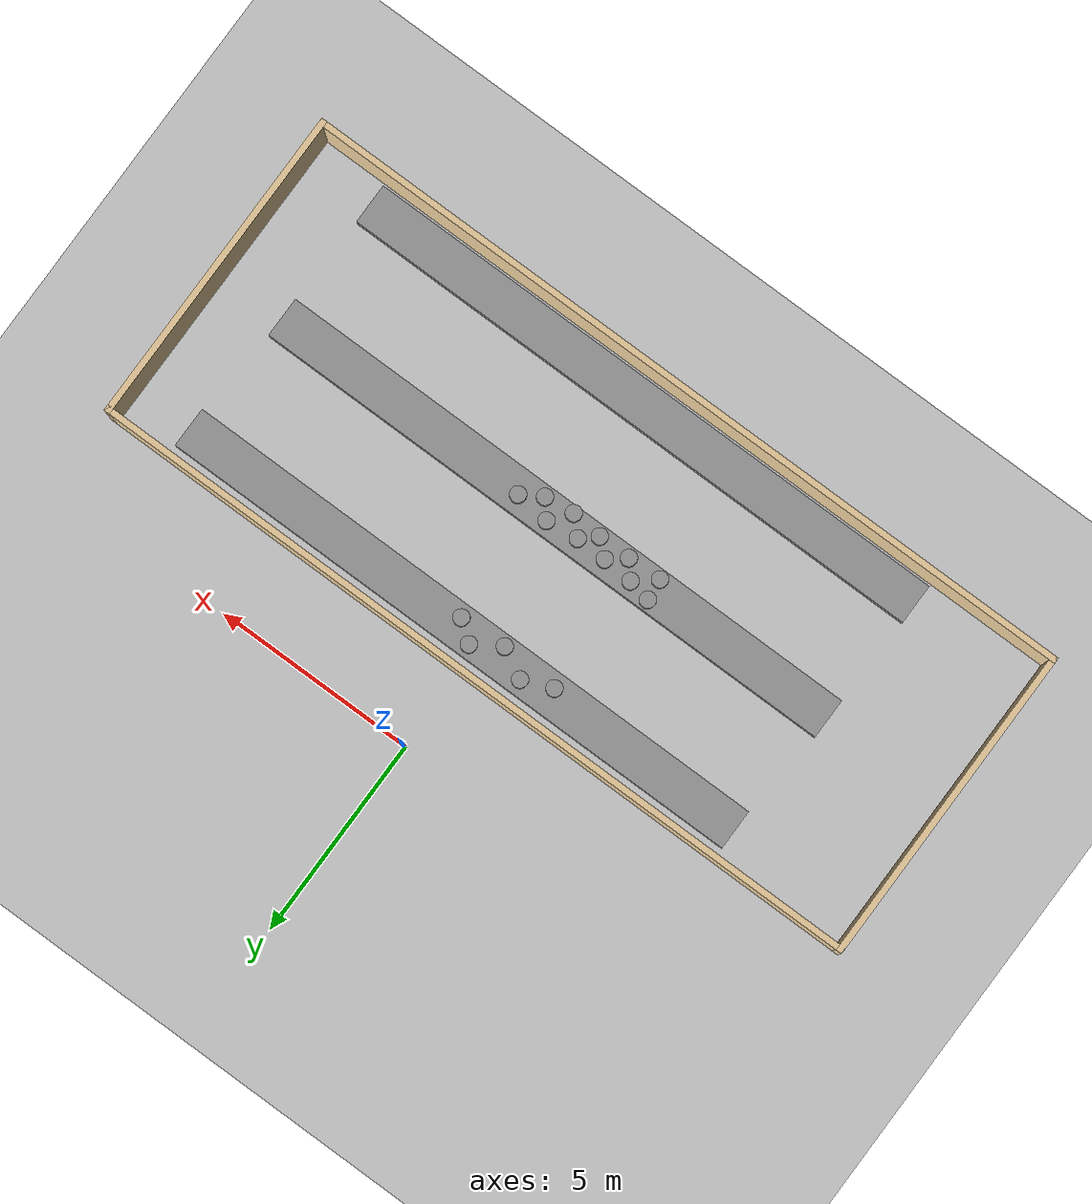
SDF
<sdf version="1.7">
 <world name="default">
  <model name="ground_plane">
   <static>1</static>
   <link name="link">
    <collision name="collision">
     <geometry><plane><normal>0 0 1</normal><size>100 100</size></plane></geometry>
     <surface>
      <contact><collide_bitmask>65535</collide_bitmask></contact>
      <friction><ode><mu>100</mu><mu2>50</mu2></ode></friction>
     </surface>
    </collision>
    <visual name="visual">
     <cast_shadows>0</cast_shadows>
     <geometry><plane><normal>0 0 1</normal><size>100 100</size></plane></geometry>
     <material>
      <script><uri>file://media/materials/scripts/gazebo.material</uri><name>Gazebo/Grey</name></script>
     </material>
    </visual>
   </link>
  </model>
  <model name="Test_Building">
   <pose>-0.420117 -4.99407 0 0 -0 0</pose>
   <link name="Wall_3">
    <collision name="Wall_3_Collision">
     <geometry><box><size>20 0.15 2.5</size></box></geometry>
     <pose>0 0 1.25 0 -0 0</pose>
    </collision>
    <visual name="Wall_3_Visual">
     <pose>0 0 1.25 0 -0 0</pose>
     <geometry><box><size>20 0.15 2.5</size></box></geometry>
     <material>
      <script><uri>file://media/materials/scripts/gazebo.material</uri><name>Gazebo/Grey</name></script>
      <ambient>0.921569 0.807843 0.615686 1</ambient>
     </material>
     <meta><layer>0</layer></meta>
    </visual>
    <pose>0 2.93093 0 0 -0 0</pose>
   </link>
   <link name="Wall_4">
    <collision name="Wall_4_Collision">
     <geometry><box><size>8 0.15 2.5</size></box></geometry>
     <pose>0 0 1.25 0 -0 0</pose>
    </collision>
    <visual name="Wall_4_Visual">
     <pose>0 0 1.25 0 -0 0</pose>
     <geometry><box><size>8 0.15 2.5</size></box></geometry>
     <material>
      <script><uri>file://media/materials/scripts/gazebo.material</uri><name>Gazebo/Grey</name></script>
      <ambient>0.921569 0.807843 0.615686 1</ambient>
     </material>
     <meta><layer>0</layer></meta>
    </visual>
    <pose>9.925 -0.994068 0 0 -0 -1.5708</pose>
   </link>
   <link name="Wall_5">
    <collision name="Wall_5_Collision">
     <geometry><box><size>20 0.15 2.5</size></box></geometry>
     <pose>0 0 1.25 0 -0 0</pose>
    </collision>
    <visual name="Wall_5_Visual">
     <pose>0 0 1.25 0 -0 0</pose>
     <geometry><box><size>20 0.15 2.5</size></box></geometry>
     <material>
      <script><uri>file://media/materials/scripts/gazebo.material</uri><name>Gazebo/Grey</name></script>
      <ambient>0.921569 0.807843 0.615686 1</ambient>
     </material>
     <meta><layer>0</layer></meta>
    </visual>
    <pose>0 -4.91907 0 0 -0 3.14159</pose>
   </link>
   <link name="Wall_6">
    <collision name="Wall_6_Collision">
     <geometry><box><size>8 0.15 2.5</size></box></geometry>
     <pose>0 0 1.25 0 -0 0</pose>
    </collision>
    <visual name="Wall_6_Visual">
     <pose>0 0 1.25 0 -0 0</pose>
     <geometry><box><size>8 0.15 2.5</size></box></geometry>
     <material>
      <script><uri>file://media/materials/scripts/gazebo.material</uri><name>Gazebo/Grey</name></script>
      <ambient>0.921569 0.807843 0.615686 1</ambient>
     </material>
     <meta><layer>0</layer></meta>
    </visual>
    <pose>-9.925 -0.994068 0 0 -0 1.5708</pose>
   </link>
   <static>1</static>
  </model>
  <model name="Test_Bench">
   <link name="link_1">
    <inertial>
     <mass>6.47546</mass>
     <inertia><ixx>0.639529</ixx><ixy>0</ixy><ixz>0</ixz><iyy>122.309</iyy><iyz>0</iyz><izz>122.749</izz></inertia>
    </inertial>
    <pose>-0 4e-06 0 0 -0 0</pose>
    <visual name="visual">
     <geometry><box><size>15.049 1 0.430283</size></box></geometry>
     <material>
      <lighting>1</lighting>
      <script><uri>file://media/materials/scripts/gazebo.material</uri><name>Gazebo/Grey</name></script>
      <shader type="pixel"/>
     </material>
    </visual>
    <collision name="collision">
     <geometry><box><size>15.049 1 0.430283</size></box></geometry>
     <surface>
      <friction>
       <ode><mu>1</mu><mu2>1</mu2><fdir1>0 0 0</fdir1><slip1>0</slip1><slip2>0</slip2></ode>
       <torsional>
        <coefficient>1</coefficient>
        <patch_radius>0</patch_radius>
        <surface_radius>0</surface_radius>
        <use_patch_radius>1</use_patch_radius>
        <ode><slip>0</slip></ode>
       </torsional>
      </friction>
      <bounce><restitution_coefficient>0</restitution_coefficient><threshold>1e+06</threshold></bounce>
      <contact>
       <collide_without_contact>0</collide_without_contact>
       <collide_without_contact_bitmask>1</collide_without_contact_bitmask>
       <collide_bitmask>1</collide_bitmask>
       <ode>
        <soft_cfm>0</soft_cfm>
        <soft_erp>0.2</soft_erp>
        <kp>1e+13</kp>
        <kd>1</kd>
        <max_vel>0.01</max_vel>
        <min_depth>0</min_depth>
       </ode>
       <bullet>
        <split_impulse>1</split_impulse>
        <split_impulse_penetration_threshold>-0.01</split_impulse_penetration_threshold>
        <soft_cfm>0</soft_cfm>
        <soft_erp>0.2</soft_erp>
        <kp>1e+13</kp>
        <kd>1</kd>
       </bullet>
      </contact>
     </surface>
    </collision>
   </link>
   <static>0</static>
   <pose>0.548934 -2.85968 0.215134 -1.4e-05 -0 9e-06</pose>
  </model>
  <model name="Test_Bench_clone">
   <link name="link_1">
    <inertial>
     <mass>6.47546</mass>
     <inertia><ixx>0.639529</ixx><ixy>0</ixy><ixz>0</ixz><iyy>122.309</iyy><iyz>0</iyz><izz>122.749</izz></inertia>
    </inertial>
    <pose>-0 4e-06 0 0 -0 0</pose>
    <visual name="visual">
     <geometry><box><size>15.049 1 0.430283</size></box></geometry>
     <material>
      <lighting>1</lighting>
      <script><uri>file://media/materials/scripts/gazebo.material</uri><name>Gazebo/Grey</name></script>
      <shader type="pixel"/>
     </material>
    </visual>
    <collision name="collision">
     <geometry><box><size>15.049 1 0.430283</size></box></geometry>
     <surface>
      <friction>
       <ode><mu>1</mu><mu2>1</mu2><fdir1>0 0 0</fdir1><slip1>0</slip1><slip2>0</slip2></ode>
       <torsional>
        <coefficient>1</coefficient>
        <patch_radius>0</patch_radius>
        <surface_radius>0</surface_radius>
        <use_patch_radius>1</use_patch_radius>
        <ode><slip>0</slip></ode>
       </torsional>
      </friction>
      <bounce><restitution_coefficient>0</restitution_coefficient><threshold>1e+06</threshold></bounce>
      <contact>
       <collide_without_contact>0</collide_without_contact>
       <collide_without_contact_bitmask>1</collide_without_contact_bitmask>
       <collide_bitmask>1</collide_bitmask>
       <ode>
        <soft_cfm>0</soft_cfm>
        <soft_erp>0.2</soft_erp>
        <kp>1e+13</kp>
        <kd>1</kd>
        <max_vel>0.01</max_vel>
        <min_depth>0</min_depth>
       </ode>
       <bullet>
        <split_impulse>1</split_impulse>
        <split_impulse_penetration_threshold>-0.01</split_impulse_penetration_threshold>
        <soft_cfm>0</soft_cfm>
        <soft_erp>0.2</soft_erp>
        <kp>1e+13</kp>
        <kd>1</kd>
       </bullet>
      </contact>
     </surface>
    </collision>
   </link>
   <static>0</static>
   <pose>0.345714 -6.05819 0.215135 -1.4e-05 -0 2e-06</pose>
  </model>
  <model name="Test_Bench_clone_0">
   <link name="link_1">
    <inertial>
     <mass>6.47546</mass>
     <inertia><ixx>0.639529</ixx><ixy>0</ixy><ixz>0</ixz><iyy>122.309</iyy><iyz>0</iyz><izz>122.749</izz></inertia>
    </inertial>
    <pose>-0 4e-06 0 0 -0 0</pose>
    <visual name="visual">
     <geometry><box><size>15.049 1 0.430283</size></box></geometry>
     <material>
      <lighting>1</lighting>
      <script><uri>file://media/materials/scripts/gazebo.material</uri><name>Gazebo/Grey</name></script>
      <shader type="pixel"/>
     </material>
    </visual>
    <collision name="collision">
     <geometry><box><size>15.049 1 0.430283</size></box></geometry>
     <surface>
      <friction>
       <ode><mu>1</mu><mu2>1</mu2><fdir1>0 0 0</fdir1><slip1>0</slip1><slip2>0</slip2></ode>
       <torsional>
        <coefficient>1</coefficient>
        <patch_radius>0</patch_radius>
        <surface_radius>0</surface_radius>
        <use_patch_radius>1</use_patch_radius>
        <ode><slip>0</slip></ode>
       </torsional>
      </friction>
      <bounce><restitution_coefficient>0</restitution_coefficient><threshold>1e+06</threshold></bounce>
      <contact>
       <collide_without_contact>0</collide_without_contact>
       <collide_without_contact_bitmask>1</collide_without_contact_bitmask>
       <collide_bitmask>1</collide_bitmask>
       <ode>
        <soft_cfm>0</soft_cfm>
        <soft_erp>0.2</soft_erp>
        <kp>1e+13</kp>
        <kd>1</kd>
        <max_vel>0.01</max_vel>
        <min_depth>0</min_depth>
       </ode>
       <bullet>
        <split_impulse>1</split_impulse>
        <split_impulse_penetration_threshold>-0.01</split_impulse_penetration_threshold>
        <soft_cfm>0</soft_cfm>
        <soft_erp>0.2</soft_erp>
        <kp>1e+13</kp>
        <kd>1</kd>
       </bullet>
      </contact>
     </surface>
    </collision>
   </link>
   <static>0</static>
   <pose>0.286602 -9.2541 0.215141 0 -0 0</pose>
  </model>
  <model name="Test_pot_clone_8">
   <link name="link_0">
    <inertial>
     <mass>0.044841</mass>
     <inertia>
      <ixx>0.000748065</ixx>
      <ixy>0</ixy>
      <ixz>0</ixz>
      <iyy>0.000748065</iyy>
      <iyz>0</iyz>
      <izz>0.000864954</izz>
     </inertia>
    </inertial>
    <pose>3e-06 1e-06 0 0 -0 0</pose>
    <visual name="visual">
     <geometry><cylinder><radius>0.196415</radius><length>0.290612</length></cylinder></geometry>
     <material>
      <lighting>1</lighting>
      <script><uri>file://media/materials/scripts/gazebo.material</uri><name>Gazebo/Grey</name></script>
      <shader type="pixel"/>
     </material>
    </visual>
    <collision name="collision">
     <geometry><cylinder><radius>0.196415</radius><length>0.290612</length></cylinder></geometry>
     <surface>
      <friction>
       <ode><mu>1</mu><mu2>1</mu2><fdir1>0 0 0</fdir1><slip1>0</slip1><slip2>0</slip2></ode>
       <torsional>
        <coefficient>1</coefficient>
        <patch_radius>0</patch_radius>
        <surface_radius>0</surface_radius>
        <use_patch_radius>1</use_patch_radius>
        <ode><slip>0</slip></ode>
       </torsional>
      </friction>
      <bounce><restitution_coefficient>0</restitution_coefficient><threshold>1e+06</threshold></bounce>
      <contact>
       <collide_without_contact>0</collide_without_contact>
       <collide_without_contact_bitmask>1</collide_without_contact_bitmask>
       <collide_bitmask>1</collide_bitmask>
       <ode>
        <soft_cfm>0</soft_cfm>
        <soft_erp>0.2</soft_erp>
        <kp>1e+13</kp>
        <kd>1</kd>
        <max_vel>0.01</max_vel>
        <min_depth>0</min_depth>
       </ode>
       <bullet>
        <split_impulse>1</split_impulse>
        <split_impulse_penetration_threshold>-0.01</split_impulse_penetration_threshold>
        <soft_cfm>0</soft_cfm>
        <soft_erp>0.2</soft_erp>
        <kp>1e+13</kp>
        <kd>1</kd>
       </bullet>
      </contact>
     </surface>
    </collision>
   </link>
   <static>0</static>
   <pose>-1.90554 -2.99928 0.575587 -3e-05 1e-05 -0.000545</pose>
  </model>
  <model name="Test_pot_clone_9">
   <link name="link_0">
    <inertial>
     <mass>0.044841</mass>
     <inertia>
      <ixx>0.000748065</ixx>
      <ixy>0</ixy>
      <ixz>0</ixz>
      <iyy>0.000748065</iyy>
      <iyz>0</iyz>
      <izz>0.000864954</izz>
     </inertia>
    </inertial>
    <pose>3e-06 1e-06 0 0 -0 0</pose>
    <visual name="visual">
     <geometry><cylinder><radius>0.196415</radius><length>0.290612</length></cylinder></geometry>
     <material>
      <lighting>1</lighting>
      <script><uri>file://media/materials/scripts/gazebo.material</uri><name>Gazebo/Grey</name></script>
      <shader type="pixel"/>
     </material>
    </visual>
    <collision name="collision">
     <geometry><cylinder><radius>0.196415</radius><length>0.290612</length></cylinder></geometry>
     <surface>
      <friction>
       <ode><mu>1</mu><mu2>1</mu2><fdir1>0 0 0</fdir1><slip1>0</slip1><slip2>0</slip2></ode>
       <torsional>
        <coefficient>1</coefficient>
        <patch_radius>0</patch_radius>
        <surface_radius>0</surface_radius>
        <use_patch_radius>1</use_patch_radius>
        <ode><slip>0</slip></ode>
       </torsional>
      </friction>
      <bounce><restitution_coefficient>0</restitution_coefficient><threshold>1e+06</threshold></bounce>
      <contact>
       <collide_without_contact>0</collide_without_contact>
       <collide_without_contact_bitmask>1</collide_without_contact_bitmask>
       <collide_bitmask>1</collide_bitmask>
       <ode>
        <soft_cfm>0</soft_cfm>
        <soft_erp>0.2</soft_erp>
        <kp>1e+13</kp>
        <kd>1</kd>
        <max_vel>0.01</max_vel>
        <min_depth>0</min_depth>
       </ode>
       <bullet>
        <split_impulse>1</split_impulse>
        <split_impulse_penetration_threshold>-0.01</split_impulse_penetration_threshold>
        <soft_cfm>0</soft_cfm>
        <soft_erp>0.2</soft_erp>
        <kp>1e+13</kp>
        <kd>1</kd>
       </bullet>
      </contact>
     </surface>
    </collision>
   </link>
   <static>0</static>
   <pose>-1.17974 -2.7047 0.575608 -5.6e-05 -6e-06 -0.000283</pose>
  </model>
  <model name="Test_pot_clone_10">
   <link name="link_0">
    <inertial>
     <mass>0.044841</mass>
     <inertia>
      <ixx>0.000748065</ixx>
      <ixy>0</ixy>
      <ixz>0</ixz>
      <iyy>0.000748065</iyy>
      <iyz>0</iyz>
      <izz>0.000864954</izz>
     </inertia>
    </inertial>
    <pose>3e-06 1e-06 0 0 -0 0</pose>
    <visual name="visual">
     <geometry><cylinder><radius>0.196415</radius><length>0.290612</length></cylinder></geometry>
     <material>
      <lighting>1</lighting>
      <script><uri>file://media/materials/scripts/gazebo.material</uri><name>Gazebo/Grey</name></script>
      <shader type="pixel"/>
     </material>
    </visual>
    <collision name="collision">
     <geometry><cylinder><radius>0.196415</radius><length>0.290612</length></cylinder></geometry>
     <surface>
      <friction>
       <ode><mu>1</mu><mu2>1</mu2><fdir1>0 0 0</fdir1><slip1>0</slip1><slip2>0</slip2></ode>
       <torsional>
        <coefficient>1</coefficient>
        <patch_radius>0</patch_radius>
        <surface_radius>0</surface_radius>
        <use_patch_radius>1</use_patch_radius>
        <ode><slip>0</slip></ode>
       </torsional>
      </friction>
      <bounce><restitution_coefficient>0</restitution_coefficient><threshold>1e+06</threshold></bounce>
      <contact>
       <collide_without_contact>0</collide_without_contact>
       <collide_without_contact_bitmask>1</collide_without_contact_bitmask>
       <collide_bitmask>1</collide_bitmask>
       <ode>
        <soft_cfm>0</soft_cfm>
        <soft_erp>0.2</soft_erp>
        <kp>1e+13</kp>
        <kd>1</kd>
        <max_vel>0.01</max_vel>
        <min_depth>0</min_depth>
       </ode>
       <bullet>
        <split_impulse>1</split_impulse>
        <split_impulse_penetration_threshold>-0.01</split_impulse_penetration_threshold>
        <soft_cfm>0</soft_cfm>
        <soft_erp>0.2</soft_erp>
        <kp>1e+13</kp>
        <kd>1</kd>
       </bullet>
      </contact>
     </surface>
    </collision>
   </link>
   <static>0</static>
   <pose>-0.473543 -3.09195 0.575592 1.9e-05 1.1e-05 -0.000312</pose>
  </model>
  <model name="Test_pot_clone_11">
   <link name="link_0">
    <inertial>
     <mass>0.044841</mass>
     <inertia>
      <ixx>0.000748065</ixx>
      <ixy>0</ixy>
      <ixz>0</ixz>
      <iyy>0.000748065</iyy>
      <iyz>0</iyz>
      <izz>0.000864954</izz>
     </inertia>
    </inertial>
    <pose>3e-06 1e-06 0 0 -0 0</pose>
    <visual name="visual">
     <geometry><cylinder><radius>0.196415</radius><length>0.290612</length></cylinder></geometry>
     <material>
      <lighting>1</lighting>
      <script><uri>file://media/materials/scripts/gazebo.material</uri><name>Gazebo/Grey</name></script>
      <shader type="pixel"/>
     </material>
    </visual>
    <collision name="collision">
     <geometry><cylinder><radius>0.196415</radius><length>0.290612</length></cylinder></geometry>
     <surface>
      <friction>
       <ode><mu>1</mu><mu2>1</mu2><fdir1>0 0 0</fdir1><slip1>0</slip1><slip2>0</slip2></ode>
       <torsional>
        <coefficient>1</coefficient>
        <patch_radius>0</patch_radius>
        <surface_radius>0</surface_radius>
        <use_patch_radius>1</use_patch_radius>
        <ode><slip>0</slip></ode>
       </torsional>
      </friction>
      <bounce><restitution_coefficient>0</restitution_coefficient><threshold>1e+06</threshold></bounce>
      <contact>
       <collide_without_contact>0</collide_without_contact>
       <collide_without_contact_bitmask>1</collide_without_contact_bitmask>
       <collide_bitmask>1</collide_bitmask>
       <ode>
        <soft_cfm>0</soft_cfm>
        <soft_erp>0.2</soft_erp>
        <kp>1e+13</kp>
        <kd>1</kd>
        <max_vel>0.01</max_vel>
        <min_depth>0</min_depth>
       </ode>
       <bullet>
        <split_impulse>1</split_impulse>
        <split_impulse_penetration_threshold>-0.01</split_impulse_penetration_threshold>
        <soft_cfm>0</soft_cfm>
        <soft_erp>0.2</soft_erp>
        <kp>1e+13</kp>
        <kd>1</kd>
       </bullet>
      </contact>
     </surface>
    </collision>
   </link>
   <static>0</static>
   <pose>0.194224 -2.66129 0.575591 -5.6e-05 -3e-06 -0.000585</pose>
  </model>
  <model name="Test_pot_clone_12">
   <link name="link_0">
    <inertial>
     <mass>0.044841</mass>
     <inertia>
      <ixx>0.000748065</ixx>
      <ixy>0</ixy>
      <ixz>0</ixz>
      <iyy>0.000748065</iyy>
      <iyz>0</iyz>
      <izz>0.000864954</izz>
     </inertia>
    </inertial>
    <pose>3e-06 1e-06 0 0 -0 0</pose>
    <visual name="visual">
     <geometry><cylinder><radius>0.196415</radius><length>0.290612</length></cylinder></geometry>
     <material>
      <lighting>1</lighting>
      <script><uri>file://media/materials/scripts/gazebo.material</uri><name>Gazebo/Grey</name></script>
      <shader type="pixel"/>
     </material>
    </visual>
    <collision name="collision">
     <geometry><cylinder><radius>0.196415</radius><length>0.290612</length></cylinder></geometry>
     <surface>
      <friction>
       <ode><mu>1</mu><mu2>1</mu2><fdir1>0 0 0</fdir1><slip1>0</slip1><slip2>0</slip2></ode>
       <torsional>
        <coefficient>1</coefficient>
        <patch_radius>0</patch_radius>
        <surface_radius>0</surface_radius>
        <use_patch_radius>1</use_patch_radius>
        <ode><slip>0</slip></ode>
       </torsional>
      </friction>
      <bounce><restitution_coefficient>0</restitution_coefficient><threshold>1e+06</threshold></bounce>
      <contact>
       <collide_without_contact>0</collide_without_contact>
       <collide_without_contact_bitmask>1</collide_without_contact_bitmask>
       <collide_bitmask>1</collide_bitmask>
       <ode>
        <soft_cfm>0</soft_cfm>
        <soft_erp>0.2</soft_erp>
        <kp>1e+13</kp>
        <kd>1</kd>
        <max_vel>0.01</max_vel>
        <min_depth>0</min_depth>
       </ode>
       <bullet>
        <split_impulse>1</split_impulse>
        <split_impulse_penetration_threshold>-0.01</split_impulse_penetration_threshold>
        <soft_cfm>0</soft_cfm>
        <soft_erp>0.2</soft_erp>
        <kp>1e+13</kp>
        <kd>1</kd>
       </bullet>
      </contact>
     </surface>
    </collision>
   </link>
   <static>0</static>
   <pose>0.679639 -3.0407 0.575586 -5e-06 -4e-06 -0.000507</pose>
  </model>
  <model name="Test_pot_clone_34">
   <link name="link_0">
    <inertial>
     <mass>0.044841</mass>
     <inertia>
      <ixx>0.000748065</ixx>
      <ixy>0</ixy>
      <ixz>0</ixz>
      <iyy>0.000748065</iyy>
      <iyz>0</iyz>
      <izz>0.000864954</izz>
     </inertia>
    </inertial>
    <pose>3e-06 1e-06 0 0 -0 0</pose>
    <visual name="visual">
     <geometry><cylinder><radius>0.196415</radius><length>0.290612</length></cylinder></geometry>
     <material>
      <lighting>1</lighting>
      <script><uri>file://media/materials/scripts/gazebo.material</uri><name>Gazebo/Grey</name></script>
      <shader type="pixel"/>
     </material>
    </visual>
    <collision name="collision">
     <geometry><cylinder><radius>0.196415</radius><length>0.290612</length></cylinder></geometry>
     <surface>
      <friction>
       <ode><mu>1</mu><mu2>1</mu2><fdir1>0 0 0</fdir1><slip1>0</slip1><slip2>0</slip2></ode>
       <torsional>
        <coefficient>1</coefficient>
        <patch_radius>0</patch_radius>
        <surface_radius>0</surface_radius>
        <use_patch_radius>1</use_patch_radius>
        <ode><slip>0</slip></ode>
       </torsional>
      </friction>
      <bounce><restitution_coefficient>0</restitution_coefficient><threshold>1e+06</threshold></bounce>
      <contact>
       <collide_without_contact>0</collide_without_contact>
       <collide_without_contact_bitmask>1</collide_without_contact_bitmask>
       <collide_bitmask>1</collide_bitmask>
       <ode>
        <soft_cfm>0</soft_cfm>
        <soft_erp>0.2</soft_erp>
        <kp>1e+13</kp>
        <kd>1</kd>
        <max_vel>0.01</max_vel>
        <min_depth>0</min_depth>
       </ode>
       <bullet>
        <split_impulse>1</split_impulse>
        <split_impulse_penetration_threshold>-0.01</split_impulse_penetration_threshold>
        <soft_cfm>0</soft_cfm>
        <soft_erp>0.2</soft_erp>
        <kp>1e+13</kp>
        <kd>1</kd>
       </bullet>
      </contact>
     </surface>
    </collision>
   </link>
   <static>0</static>
   <pose>-2.40154 -5.80227 0.575587 -4.8e-05 1.4e-05 -0.000316</pose>
  </model>
  <model name="Test_pot_clone_35">
   <link name="link_0">
    <inertial>
     <mass>0.044841</mass>
     <inertia>
      <ixx>0.000748065</ixx>
      <ixy>0</ixy>
      <ixz>0</ixz>
      <iyy>0.000748065</iyy>
      <iyz>0</iyz>
      <izz>0.000864954</izz>
     </inertia>
    </inertial>
    <pose>3e-06 1e-06 0 0 -0 0</pose>
    <visual name="visual">
     <geometry><cylinder><radius>0.196415</radius><length>0.290612</length></cylinder></geometry>
     <material>
      <lighting>1</lighting>
      <script><uri>file://media/materials/scripts/gazebo.material</uri><name>Gazebo/Grey</name></script>
      <shader type="pixel"/>
     </material>
    </visual>
    <collision name="collision">
     <geometry><cylinder><radius>0.196415</radius><length>0.290612</length></cylinder></geometry>
     <surface>
      <friction>
       <ode><mu>1</mu><mu2>1</mu2><fdir1>0 0 0</fdir1><slip1>0</slip1><slip2>0</slip2></ode>
       <torsional>
        <coefficient>1</coefficient>
        <patch_radius>0</patch_radius>
        <surface_radius>0</surface_radius>
        <use_patch_radius>1</use_patch_radius>
        <ode><slip>0</slip></ode>
       </torsional>
      </friction>
      <bounce><restitution_coefficient>0</restitution_coefficient><threshold>1e+06</threshold></bounce>
      <contact>
       <collide_without_contact>0</collide_without_contact>
       <collide_without_contact_bitmask>1</collide_without_contact_bitmask>
       <collide_bitmask>1</collide_bitmask>
       <ode>
        <soft_cfm>0</soft_cfm>
        <soft_erp>0.2</soft_erp>
        <kp>1e+13</kp>
        <kd>1</kd>
        <max_vel>0.01</max_vel>
        <min_depth>0</min_depth>
       </ode>
       <bullet>
        <split_impulse>1</split_impulse>
        <split_impulse_penetration_threshold>-0.01</split_impulse_penetration_threshold>
        <soft_cfm>0</soft_cfm>
        <soft_erp>0.2</soft_erp>
        <kp>1e+13</kp>
        <kd>1</kd>
       </bullet>
      </contact>
     </surface>
    </collision>
   </link>
   <static>0</static>
   <pose>-2.35241 -6.32591 0.575592 -4.4e-05 2e-06 -0.000307</pose>
  </model>
  <model name="Test_pot_clone_36">
   <link name="link_0">
    <inertial>
     <mass>0.044841</mass>
     <inertia>
      <ixx>0.000748065</ixx>
      <ixy>0</ixy>
      <ixz>0</ixz>
      <iyy>0.000748065</iyy>
      <iyz>0</iyz>
      <izz>0.000864954</izz>
     </inertia>
    </inertial>
    <pose>3e-06 1e-06 0 0 -0 0</pose>
    <visual name="visual">
     <geometry><cylinder><radius>0.196415</radius><length>0.290612</length></cylinder></geometry>
     <material>
      <lighting>1</lighting>
      <script><uri>file://media/materials/scripts/gazebo.material</uri><name>Gazebo/Grey</name></script>
      <shader type="pixel"/>
     </material>
    </visual>
    <collision name="collision">
     <geometry><cylinder><radius>0.196415</radius><length>0.290612</length></cylinder></geometry>
     <surface>
      <friction>
       <ode><mu>1</mu><mu2>1</mu2><fdir1>0 0 0</fdir1><slip1>0</slip1><slip2>0</slip2></ode>
       <torsional>
        <coefficient>1</coefficient>
        <patch_radius>0</patch_radius>
        <surface_radius>0</surface_radius>
        <use_patch_radius>1</use_patch_radius>
        <ode><slip>0</slip></ode>
       </torsional>
      </friction>
      <bounce><restitution_coefficient>0</restitution_coefficient><threshold>1e+06</threshold></bounce>
      <contact>
       <collide_without_contact>0</collide_without_contact>
       <collide_without_contact_bitmask>1</collide_without_contact_bitmask>
       <collide_bitmask>1</collide_bitmask>
       <ode>
        <soft_cfm>0</soft_cfm>
        <soft_erp>0.2</soft_erp>
        <kp>1e+13</kp>
        <kd>1</kd>
        <max_vel>0.01</max_vel>
        <min_depth>0</min_depth>
       </ode>
       <bullet>
        <split_impulse>1</split_impulse>
        <split_impulse_penetration_threshold>-0.01</split_impulse_penetration_threshold>
        <soft_cfm>0</soft_cfm>
        <soft_erp>0.2</soft_erp>
        <kp>1e+13</kp>
        <kd>1</kd>
       </bullet>
      </contact>
     </surface>
    </collision>
   </link>
   <static>0</static>
   <pose>-1.84868 -5.9091 0.575592 4.4e-05 -1.2e-05 -0.000833</pose>
  </model>
  <model name="Test_pot_clone_37">
   <link name="link_0">
    <inertial>
     <mass>0.044841</mass>
     <inertia>
      <ixx>0.000748065</ixx>
      <ixy>0</ixy>
      <ixz>0</ixz>
      <iyy>0.000748065</iyy>
      <iyz>0</iyz>
      <izz>0.000864954</izz>
     </inertia>
    </inertial>
    <pose>3e-06 1e-06 0 0 -0 0</pose>
    <visual name="visual">
     <geometry><cylinder><radius>0.196415</radius><length>0.290612</length></cylinder></geometry>
     <material>
      <lighting>1</lighting>
      <script><uri>file://media/materials/scripts/gazebo.material</uri><name>Gazebo/Grey</name></script>
      <shader type="pixel"/>
     </material>
    </visual>
    <collision name="collision">
     <geometry><cylinder><radius>0.196415</radius><length>0.290612</length></cylinder></geometry>
     <surface>
      <friction>
       <ode><mu>1</mu><mu2>1</mu2><fdir1>0 0 0</fdir1><slip1>0</slip1><slip2>0</slip2></ode>
       <torsional>
        <coefficient>1</coefficient>
        <patch_radius>0</patch_radius>
        <surface_radius>0</surface_radius>
        <use_patch_radius>1</use_patch_radius>
        <ode><slip>0</slip></ode>
       </torsional>
      </friction>
      <bounce><restitution_coefficient>0</restitution_coefficient><threshold>1e+06</threshold></bounce>
      <contact>
       <collide_without_contact>0</collide_without_contact>
       <collide_without_contact_bitmask>1</collide_without_contact_bitmask>
       <collide_bitmask>1</collide_bitmask>
       <ode>
        <soft_cfm>0</soft_cfm>
        <soft_erp>0.2</soft_erp>
        <kp>1e+13</kp>
        <kd>1</kd>
        <max_vel>0.01</max_vel>
        <min_depth>0</min_depth>
       </ode>
       <bullet>
        <split_impulse>1</split_impulse>
        <split_impulse_penetration_threshold>-0.01</split_impulse_penetration_threshold>
        <soft_cfm>0</soft_cfm>
        <soft_erp>0.2</soft_erp>
        <kp>1e+13</kp>
        <kd>1</kd>
       </bullet>
      </contact>
     </surface>
    </collision>
   </link>
   <static>0</static>
   <pose>-1.51846 -6.29965 0.575587 -1.9e-05 5e-06 -0.000506</pose>
  </model>
  <model name="Test_pot_clone_38">
   <link name="link_0">
    <inertial>
     <mass>0.044841</mass>
     <inertia>
      <ixx>0.000748065</ixx>
      <ixy>0</ixy>
      <ixz>0</ixz>
      <iyy>0.000748065</iyy>
      <iyz>0</iyz>
      <izz>0.000864954</izz>
     </inertia>
    </inertial>
    <pose>3e-06 1e-06 0 0 -0 0</pose>
    <visual name="visual">
     <geometry><cylinder><radius>0.196415</radius><length>0.290612</length></cylinder></geometry>
     <material>
      <lighting>1</lighting>
      <script><uri>file://media/materials/scripts/gazebo.material</uri><name>Gazebo/Grey</name></script>
      <shader type="pixel"/>
     </material>
    </visual>
    <collision name="collision">
     <geometry><cylinder><radius>0.196415</radius><length>0.290612</length></cylinder></geometry>
     <surface>
      <friction>
       <ode><mu>1</mu><mu2>1</mu2><fdir1>0 0 0</fdir1><slip1>0</slip1><slip2>0</slip2></ode>
       <torsional>
        <coefficient>1</coefficient>
        <patch_radius>0</patch_radius>
        <surface_radius>0</surface_radius>
        <use_patch_radius>1</use_patch_radius>
        <ode><slip>0</slip></ode>
       </torsional>
      </friction>
      <bounce><restitution_coefficient>0</restitution_coefficient><threshold>1e+06</threshold></bounce>
      <contact>
       <collide_without_contact>0</collide_without_contact>
       <collide_without_contact_bitmask>1</collide_without_contact_bitmask>
       <collide_bitmask>1</collide_bitmask>
       <ode>
        <soft_cfm>0</soft_cfm>
        <soft_erp>0.2</soft_erp>
        <kp>1e+13</kp>
        <kd>1</kd>
        <max_vel>0.01</max_vel>
        <min_depth>0</min_depth>
       </ode>
       <bullet>
        <split_impulse>1</split_impulse>
        <split_impulse_penetration_threshold>-0.01</split_impulse_penetration_threshold>
        <soft_cfm>0</soft_cfm>
        <soft_erp>0.2</soft_erp>
        <kp>1e+13</kp>
        <kd>1</kd>
       </bullet>
      </contact>
     </surface>
    </collision>
   </link>
   <static>0</static>
   <pose>-1.10442 -5.95948 0.575584 2e-06 2e-06 -0.000329</pose>
  </model>
  <model name="Test_pot_clone_39">
   <link name="link_0">
    <inertial>
     <mass>0.044841</mass>
     <inertia>
      <ixx>0.000748065</ixx>
      <ixy>0</ixy>
      <ixz>0</ixz>
      <iyy>0.000748065</iyy>
      <iyz>0</iyz>
      <izz>0.000864954</izz>
     </inertia>
    </inertial>
    <pose>3e-06 1e-06 0 0 -0 0</pose>
    <visual name="visual">
     <geometry><cylinder><radius>0.196415</radius><length>0.290612</length></cylinder></geometry>
     <material>
      <lighting>1</lighting>
      <script><uri>file://media/materials/scripts/gazebo.material</uri><name>Gazebo/Grey</name></script>
      <shader type="pixel"/>
     </material>
    </visual>
    <collision name="collision">
     <geometry><cylinder><radius>0.196415</radius><length>0.290612</length></cylinder></geometry>
     <surface>
      <friction>
       <ode><mu>1</mu><mu2>1</mu2><fdir1>0 0 0</fdir1><slip1>0</slip1><slip2>0</slip2></ode>
       <torsional>
        <coefficient>1</coefficient>
        <patch_radius>0</patch_radius>
        <surface_radius>0</surface_radius>
        <use_patch_radius>1</use_patch_radius>
        <ode><slip>0</slip></ode>
       </torsional>
      </friction>
      <bounce><restitution_coefficient>0</restitution_coefficient><threshold>1e+06</threshold></bounce>
      <contact>
       <collide_without_contact>0</collide_without_contact>
       <collide_without_contact_bitmask>1</collide_without_contact_bitmask>
       <collide_bitmask>1</collide_bitmask>
       <ode>
        <soft_cfm>0</soft_cfm>
        <soft_erp>0.2</soft_erp>
        <kp>1e+13</kp>
        <kd>1</kd>
        <max_vel>0.01</max_vel>
        <min_depth>0</min_depth>
       </ode>
       <bullet>
        <split_impulse>1</split_impulse>
        <split_impulse_penetration_threshold>-0.01</split_impulse_penetration_threshold>
        <soft_cfm>0</soft_cfm>
        <soft_erp>0.2</soft_erp>
        <kp>1e+13</kp>
        <kd>1</kd>
       </bullet>
      </contact>
     </surface>
    </collision>
   </link>
   <static>0</static>
   <pose>-0.712586 -6.30288 0.575597 4.5e-05 -5e-06 -0.000582</pose>
  </model>
  <model name="Test_pot_clone_40">
   <link name="link_0">
    <inertial>
     <mass>0.044841</mass>
     <inertia>
      <ixx>0.000748065</ixx>
      <ixy>0</ixy>
      <ixz>0</ixz>
      <iyy>0.000748065</iyy>
      <iyz>0</iyz>
      <izz>0.000864954</izz>
     </inertia>
    </inertial>
    <pose>3e-06 1e-06 0 0 -0 0</pose>
    <visual name="visual">
     <geometry><cylinder><radius>0.196415</radius><length>0.290612</length></cylinder></geometry>
     <material>
      <lighting>1</lighting>
      <script><uri>file://media/materials/scripts/gazebo.material</uri><name>Gazebo/Grey</name></script>
      <shader type="pixel"/>
     </material>
    </visual>
    <collision name="collision">
     <geometry><cylinder><radius>0.196415</radius><length>0.290612</length></cylinder></geometry>
     <surface>
      <friction>
       <ode><mu>1</mu><mu2>1</mu2><fdir1>0 0 0</fdir1><slip1>0</slip1><slip2>0</slip2></ode>
       <torsional>
        <coefficient>1</coefficient>
        <patch_radius>0</patch_radius>
        <surface_radius>0</surface_radius>
        <use_patch_radius>1</use_patch_radius>
        <ode><slip>0</slip></ode>
       </torsional>
      </friction>
      <bounce><restitution_coefficient>0</restitution_coefficient><threshold>1e+06</threshold></bounce>
      <contact>
       <collide_without_contact>0</collide_without_contact>
       <collide_without_contact_bitmask>1</collide_without_contact_bitmask>
       <collide_bitmask>1</collide_bitmask>
       <ode>
        <soft_cfm>0</soft_cfm>
        <soft_erp>0.2</soft_erp>
        <kp>1e+13</kp>
        <kd>1</kd>
        <max_vel>0.01</max_vel>
        <min_depth>0</min_depth>
       </ode>
       <bullet>
        <split_impulse>1</split_impulse>
        <split_impulse_penetration_threshold>-0.01</split_impulse_penetration_threshold>
        <soft_cfm>0</soft_cfm>
        <soft_erp>0.2</soft_erp>
        <kp>1e+13</kp>
        <kd>1</kd>
       </bullet>
      </contact>
     </surface>
    </collision>
   </link>
   <static>0</static>
   <pose>-0.34967 -5.97727 0.575584 1e-06 9e-06 -0.000815</pose>
  </model>
  <model name="Test_pot_clone_41">
   <link name="link_0">
    <inertial>
     <mass>0.044841</mass>
     <inertia>
      <ixx>0.000748065</ixx>
      <ixy>0</ixy>
      <ixz>0</ixz>
      <iyy>0.000748065</iyy>
      <iyz>0</iyz>
      <izz>0.000864954</izz>
     </inertia>
    </inertial>
    <pose>3e-06 1e-06 0 0 -0 0</pose>
    <visual name="visual">
     <geometry><cylinder><radius>0.196415</radius><length>0.290612</length></cylinder></geometry>
     <material>
      <lighting>1</lighting>
      <script><uri>file://media/materials/scripts/gazebo.material</uri><name>Gazebo/Grey</name></script>
      <shader type="pixel"/>
     </material>
    </visual>
    <collision name="collision">
     <geometry><cylinder><radius>0.196415</radius><length>0.290612</length></cylinder></geometry>
     <surface>
      <friction>
       <ode><mu>1</mu><mu2>1</mu2><fdir1>0 0 0</fdir1><slip1>0</slip1><slip2>0</slip2></ode>
       <torsional>
        <coefficient>1</coefficient>
        <patch_radius>0</patch_radius>
        <surface_radius>0</surface_radius>
        <use_patch_radius>1</use_patch_radius>
        <ode><slip>0</slip></ode>
       </torsional>
      </friction>
      <bounce><restitution_coefficient>0</restitution_coefficient><threshold>1e+06</threshold></bounce>
      <contact>
       <collide_without_contact>0</collide_without_contact>
       <collide_without_contact_bitmask>1</collide_without_contact_bitmask>
       <collide_bitmask>1</collide_bitmask>
       <ode>
        <soft_cfm>0</soft_cfm>
        <soft_erp>0.2</soft_erp>
        <kp>1e+13</kp>
        <kd>1</kd>
        <max_vel>0.01</max_vel>
        <min_depth>0</min_depth>
       </ode>
       <bullet>
        <split_impulse>1</split_impulse>
        <split_impulse_penetration_threshold>-0.01</split_impulse_penetration_threshold>
        <soft_cfm>0</soft_cfm>
        <soft_erp>0.2</soft_erp>
        <kp>1e+13</kp>
        <kd>1</kd>
       </bullet>
      </contact>
     </surface>
    </collision>
   </link>
   <static>0</static>
   <pose>0.054713 -6.37435 0.57559 -3.4e-05 -3e-06 -0.000418</pose>
  </model>
  <model name="Test_pot_clone_42">
   <link name="link_0">
    <inertial>
     <mass>0.044841</mass>
     <inertia>
      <ixx>0.000748065</ixx>
      <ixy>0</ixy>
      <ixz>0</ixz>
      <iyy>0.000748065</iyy>
      <iyz>0</iyz>
      <izz>0.000864954</izz>
     </inertia>
    </inertial>
    <pose>3e-06 1e-06 0 0 -0 0</pose>
    <visual name="visual">
     <geometry><cylinder><radius>0.196415</radius><length>0.290612</length></cylinder></geometry>
     <material>
      <lighting>1</lighting>
      <script><uri>file://media/materials/scripts/gazebo.material</uri><name>Gazebo/Grey</name></script>
      <shader type="pixel"/>
     </material>
    </visual>
    <collision name="collision">
     <geometry><cylinder><radius>0.196415</radius><length>0.290612</length></cylinder></geometry>
     <surface>
      <friction>
       <ode><mu>1</mu><mu2>1</mu2><fdir1>0 0 0</fdir1><slip1>0</slip1><slip2>0</slip2></ode>
       <torsional>
        <coefficient>1</coefficient>
        <patch_radius>0</patch_radius>
        <surface_radius>0</surface_radius>
        <use_patch_radius>1</use_patch_radius>
        <ode><slip>0</slip></ode>
       </torsional>
      </friction>
      <bounce><restitution_coefficient>0</restitution_coefficient><threshold>1e+06</threshold></bounce>
      <contact>
       <collide_without_contact>0</collide_without_contact>
       <collide_without_contact_bitmask>1</collide_without_contact_bitmask>
       <collide_bitmask>1</collide_bitmask>
       <ode>
        <soft_cfm>0</soft_cfm>
        <soft_erp>0.2</soft_erp>
        <kp>1e+13</kp>
        <kd>1</kd>
        <max_vel>0.01</max_vel>
        <min_depth>0</min_depth>
       </ode>
       <bullet>
        <split_impulse>1</split_impulse>
        <split_impulse_penetration_threshold>-0.01</split_impulse_penetration_threshold>
        <soft_cfm>0</soft_cfm>
        <soft_erp>0.2</soft_erp>
        <kp>1e+13</kp>
        <kd>1</kd>
       </bullet>
      </contact>
     </surface>
    </collision>
   </link>
   <static>0</static>
   <pose>0.444764 -5.88607 0.575591 4.2e-05 -1.7e-05 -0.000394</pose>
  </model>
  <model name="Test_pot_clone_43">
   <link name="link_0">
    <inertial>
     <mass>0.044841</mass>
     <inertia>
      <ixx>0.000748065</ixx>
      <ixy>0</ixy>
      <ixz>0</ixz>
      <iyy>0.000748065</iyy>
      <iyz>0</iyz>
      <izz>0.000864954</izz>
     </inertia>
    </inertial>
    <pose>3e-06 1e-06 0 0 -0 0</pose>
    <visual name="visual">
     <geometry><cylinder><radius>0.196415</radius><length>0.290612</length></cylinder></geometry>
     <material>
      <lighting>1</lighting>
      <script><uri>file://media/materials/scripts/gazebo.material</uri><name>Gazebo/Grey</name></script>
      <shader type="pixel"/>
     </material>
    </visual>
    <collision name="collision">
     <geometry><cylinder><radius>0.196415</radius><length>0.290612</length></cylinder></geometry>
     <surface>
      <friction>
       <ode><mu>1</mu><mu2>1</mu2><fdir1>0 0 0</fdir1><slip1>0</slip1><slip2>0</slip2></ode>
       <torsional>
        <coefficient>1</coefficient>
        <patch_radius>0</patch_radius>
        <surface_radius>0</surface_radius>
        <use_patch_radius>1</use_patch_radius>
        <ode><slip>0</slip></ode>
       </torsional>
      </friction>
      <bounce><restitution_coefficient>0</restitution_coefficient><threshold>1e+06</threshold></bounce>
      <contact>
       <collide_without_contact>0</collide_without_contact>
       <collide_without_contact_bitmask>1</collide_without_contact_bitmask>
       <collide_bitmask>1</collide_bitmask>
       <ode>
        <soft_cfm>0</soft_cfm>
        <soft_erp>0.2</soft_erp>
        <kp>1e+13</kp>
        <kd>1</kd>
        <max_vel>0.01</max_vel>
        <min_depth>0</min_depth>
       </ode>
       <bullet>
        <split_impulse>1</split_impulse>
        <split_impulse_penetration_threshold>-0.01</split_impulse_penetration_threshold>
        <soft_cfm>0</soft_cfm>
        <soft_erp>0.2</soft_erp>
        <kp>1e+13</kp>
        <kd>1</kd>
       </bullet>
      </contact>
     </surface>
    </collision>
   </link>
   <static>0</static>
   <pose>0.780574 -6.28973 0.575586 -1.8e-05 -1e-06 -0.00045</pose>
  </model>
  <model name="Test_pot_clone_44">
   <link name="link_0">
    <inertial>
     <mass>0.044841</mass>
     <inertia>
      <ixx>0.000748065</ixx>
      <ixy>0</ixy>
      <ixz>0</ixz>
      <iyy>0.000748065</iyy>
      <iyz>0</iyz>
      <izz>0.000864954</izz>
     </inertia>
    </inertial>
    <pose>3e-06 1e-06 0 0 -0 0</pose>
    <visual name="visual">
     <geometry><cylinder><radius>0.196415</radius><length>0.290612</length></cylinder></geometry>
     <material>
      <lighting>1</lighting>
      <script><uri>file://media/materials/scripts/gazebo.material</uri><name>Gazebo/Grey</name></script>
      <shader type="pixel"/>
     </material>
    </visual>
    <collision name="collision">
     <geometry><cylinder><radius>0.196415</radius><length>0.290612</length></cylinder></geometry>
     <surface>
      <friction>
       <ode><mu>1</mu><mu2>1</mu2><fdir1>0 0 0</fdir1><slip1>0</slip1><slip2>0</slip2></ode>
       <torsional>
        <coefficient>1</coefficient>
        <patch_radius>0</patch_radius>
        <surface_radius>0</surface_radius>
        <use_patch_radius>1</use_patch_radius>
        <ode><slip>0</slip></ode>
       </torsional>
      </friction>
      <bounce><restitution_coefficient>0</restitution_coefficient><threshold>1e+06</threshold></bounce>
      <contact>
       <collide_without_contact>0</collide_without_contact>
       <collide_without_contact_bitmask>1</collide_without_contact_bitmask>
       <collide_bitmask>1</collide_bitmask>
       <ode>
        <soft_cfm>0</soft_cfm>
        <soft_erp>0.2</soft_erp>
        <kp>1e+13</kp>
        <kd>1</kd>
        <max_vel>0.01</max_vel>
        <min_depth>0</min_depth>
       </ode>
       <bullet>
        <split_impulse>1</split_impulse>
        <split_impulse_penetration_threshold>-0.01</split_impulse_penetration_threshold>
        <soft_cfm>0</soft_cfm>
        <soft_erp>0.2</soft_erp>
        <kp>1e+13</kp>
        <kd>1</kd>
       </bullet>
      </contact>
     </surface>
    </collision>
   </link>
   <static>0</static>
   <pose>1.29295 -5.98055 0.575587 9e-06 -1e-06 -0.000388</pose>
  </model>
 </world>
</sdf>
